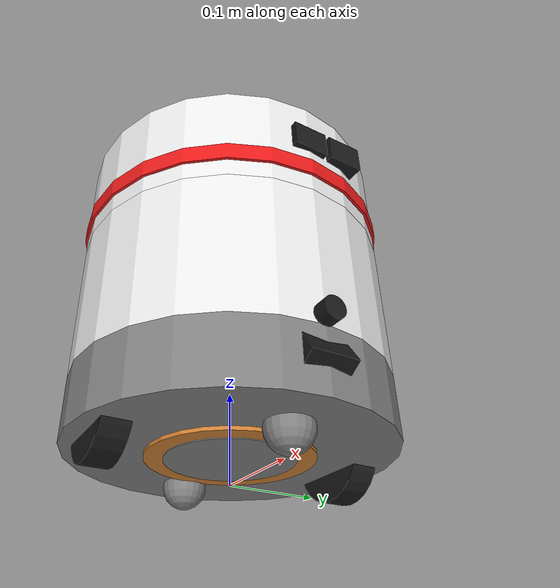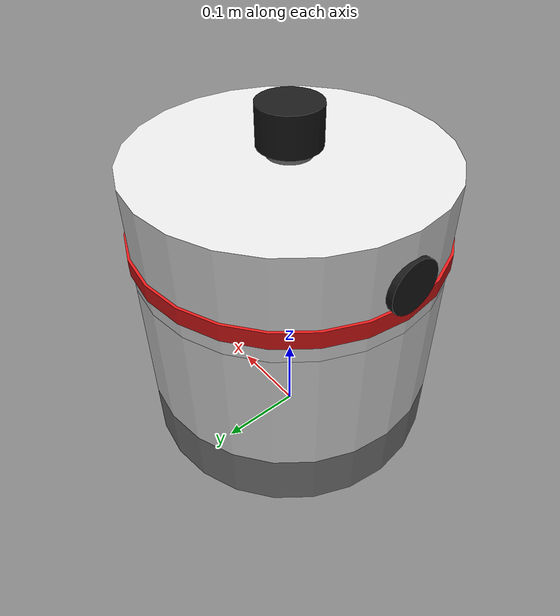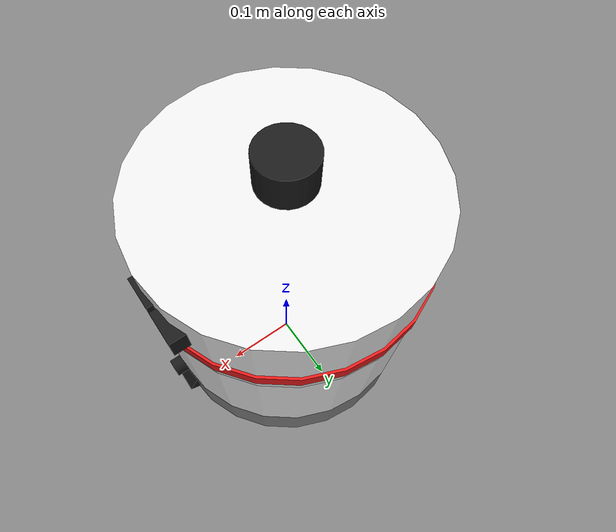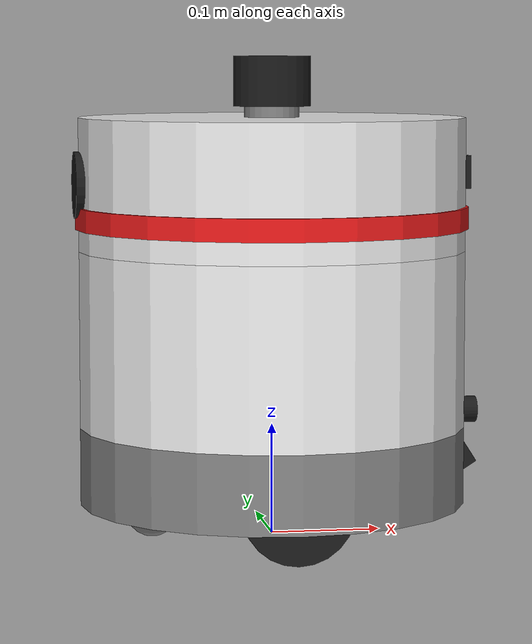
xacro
<?xml version="1.0"?>
<!-- Unit 1 body: cylindrical, three layers (drive/battery, extinguisher, sensors), LiDAR on top.
     Sensor/drive interfaces match fire_robot.urdf.xacro (see docs/robot_interface_inventory.md). -->
<robot name="fire_robot" xmlns:xacro="http://www.ros.org/wiki/xacro">

  <!-- Dimensions [m]. base_link origin lies on the ground under the wheel axle (= rotation center). -->
  <xacro:property name="body_radius" value="0.175"/>
  <xacro:property name="body_clearance" value="0.03"/>
  <!-- Layer boundaries (z): lower 0.03-0.10, middle 0.10-0.26, upper 0.26-0.38 -->
  <xacro:property name="lower_top" value="0.10"/>
  <xacro:property name="middle_top" value="0.26"/>
  <xacro:property name="upper_top" value="0.38"/>

  <!-- Drive: same values as the old body, so DiffDrive limits and odometry stay unchanged -->
  <xacro:property name="wheel_radius" value="0.05"/>
  <xacro:property name="wheel_width" value="0.03"/>
  <xacro:property name="wheel_separation" value="0.28"/>
  <xacro:property name="wheel_mass" value="0.2"/>
  <xacro:property name="caster_radius" value="0.025"/>
  <xacro:property name="caster_x" value="-0.11"/>

  <!-- Heavy parts low: battery + lower deck carry most of the mass -->
  <xacro:property name="battery_mass" value="1.5"/>
  <xacro:property name="lower_mass" value="0.8"/>
  <xacro:property name="middle_mass" value="0.4"/>
  <xacro:property name="upper_mass" value="0.3"/>
  <xacro:property name="can_mass" value="0.4"/>

  <!-- Sensors face forward (yaw 0); mission_node reads their positions from TF.
       Camera lenses sit just outside the shell, so no part of the body is in view. -->
  <xacro:property name="lidar_x" value="0.0"/>
  <!-- Scan plane below the lowest furniture top (coffee table, 0.45) used by the map -->
  <xacro:property name="lidar_z" value="0.41"/>
  <!-- Thermal camera must stay on the center line (ALIGN turns the heading onto it) -->
  <xacro:property name="thermal_x" value="0.18"/>
  <xacro:property name="thermal_z" value="0.33"/>
  <xacro:property name="thermal_hfov" value="1.0472"/>
  <xacro:property name="rgb_y" value="0.045"/>
  <xacro:property name="camera_depth" value="0.03"/>

  <!-- Nozzle link center; tip at x 0.19, z 0.11 (spray_nozzle defaults) -->
  <xacro:property name="nozzle_x" value="0.175"/>
  <xacro:property name="nozzle_z" value="0.11"/>
  <xacro:property name="nozzle_length" value="0.03"/>

  <xacro:property name="can_radius" value="0.033"/>
  <xacro:property name="can_height" value="0.15"/>
  <xacro:property name="can_x" value="-0.06"/>

  <material name="white"><color rgba="0.9 0.9 0.9 1"/></material>
  <material name="red"><color rgba="0.9 0.1 0.1 1"/></material>
  <material name="black"><color rgba="0.1 0.1 0.1 1"/></material>
  <material name="grey"><color rgba="0.5 0.5 0.5 1"/></material>
  <material name="copper"><color rgba="0.8 0.5 0.2 1"/></material>

  <xacro:macro name="cylinder_inertial" params="mass radius length z">
    <inertial>
      <origin xyz="0 0 ${z}"/>
      <mass value="${mass}"/>
      <inertia ixx="${mass*(3*radius*radius + length*length)/12}" ixy="0" ixz="0"
               iyy="${mass*(3*radius*radius + length*length)/12}" iyz="0"
               izz="${mass*radius*radius/2}"/>
    </inertial>
  </xacro:macro>

  <!-- Body layer: one cylinder segment from z_bottom to z_top (base_link frame) -->
  <xacro:macro name="body_layer" params="name z_bottom z_top mass material">
    <link name="${name}_link">
      <visual>
        <origin xyz="0 0 ${(z_bottom + z_top)/2}"/>
        <geometry><cylinder radius="${body_radius}" length="${z_top - z_bottom}"/></geometry>
        <material name="${material}"/>
      </visual>
      <collision>
        <origin xyz="0 0 ${(z_bottom + z_top)/2}"/>
        <geometry><cylinder radius="${body_radius}" length="${z_top - z_bottom}"/></geometry>
      </collision>
      <xacro:cylinder_inertial mass="${mass}" radius="${body_radius}"
                               length="${z_top - z_bottom}" z="${(z_bottom + z_top)/2}"/>
    </link>
    <joint name="${name}_joint" type="fixed">
      <parent link="base_link"/>
      <child link="${name}_link"/>
    </joint>
  </xacro:macro>

  <!-- Dummy root without inertia (KDL does not support an inertial root link) -->
  <link name="base_footprint"/>
  <link name="base_link"/>
  <joint name="base_joint" type="fixed">
    <parent link="base_footprint"/>
    <child link="base_link"/>
  </joint>

  <!-- ===== Lower layer: drive wheels, casters, battery ===== -->
  <xacro:body_layer name="lower_body" z_bottom="${body_clearance}" z_top="${lower_top}"
                    mass="${lower_mass}" material="grey"/>

  <link name="battery_link">
    <visual>
      <geometry><box size="0.14 0.20 0.05"/></geometry>
      <material name="black"/>
    </visual>
    <inertial>
      <mass value="${battery_mass}"/>
      <inertia ixx="${battery_mass*(0.20*0.20 + 0.05*0.05)/12}" ixy="0" ixz="0"
               iyy="${battery_mass*(0.14*0.14 + 0.05*0.05)/12}" iyz="0"
               izz="${battery_mass*(0.14*0.14 + 0.20*0.20)/12}"/>
    </inertial>
  </link>
  <joint name="battery_joint" type="fixed">
    <parent link="base_link"/>
    <child link="battery_link"/>
    <origin xyz="0 0 0.06"/>
  </joint>

  <xacro:macro name="wheel" params="side y_sign">
    <link name="${side}_wheel_link">
      <visual>
        <origin rpy="${pi/2} 0 0"/>
        <geometry><cylinder radius="${wheel_radius}" length="${wheel_width}"/></geometry>
        <material name="black"/>
      </visual>
      <collision>
        <origin rpy="${pi/2} 0 0"/>
        <geometry><cylinder radius="${wheel_radius}" length="${wheel_width}"/></geometry>
      </collision>
      <inertial>
        <origin rpy="${pi/2} 0 0"/>
        <mass value="${wheel_mass}"/>
        <inertia ixx="${wheel_mass*(3*wheel_radius*wheel_radius + wheel_width*wheel_width)/12}" ixy="0" ixz="0"
                 iyy="${wheel_mass*(3*wheel_radius*wheel_radius + wheel_width*wheel_width)/12}" iyz="0"
                 izz="${wheel_mass*wheel_radius*wheel_radius/2}"/>
      </inertial>
    </link>
    <joint name="${side}_wheel_joint" type="continuous">
      <parent link="base_link"/>
      <child link="${side}_wheel_link"/>
      <origin xyz="0 ${y_sign*wheel_separation/2} ${wheel_radius}"/>
      <axis xyz="0 1 0"/>
    </joint>
    <gazebo reference="${side}_wheel_link">
      <mu1>1.0</mu1>
      <mu2>1.0</mu2>
    </gazebo>
  </xacro:macro>
  <xacro:wheel side="left" y_sign="1"/>
  <xacro:wheel side="right" y_sign="-1"/>

  <!-- Frictionless ball casters front and back -->
  <xacro:macro name="caster" params="name x">
    <link name="${name}_link">
      <visual>
        <geometry><sphere radius="${caster_radius}"/></geometry>
        <material name="grey"/>
      </visual>
      <collision>
        <geometry><sphere radius="${caster_radius}"/></geometry>
      </collision>
      <inertial>
        <mass value="0.05"/>
        <inertia ixx="1e-5" ixy="0" ixz="0" iyy="1e-5" iyz="0" izz="1e-5"/>
      </inertial>
    </link>
    <joint name="${name}_joint" type="fixed">
      <parent link="base_link"/>
      <child link="${name}_link"/>
      <origin xyz="${x} 0 ${caster_radius}"/>
    </joint>
    <gazebo reference="${name}_link">
      <mu1>0.0</mu1>
      <mu2>0.0</mu2>
    </gazebo>
  </xacro:macro>
  <xacro:caster name="caster" x="${caster_x}"/>
  <xacro:caster name="front_caster" x="${-caster_x}"/>

  <!-- Ring-shaped charging contact on the bottom (visual only): copper ring, grey center -->
  <link name="charging_contact_link">
    <visual>
      <origin xyz="0 0 -0.002"/>
      <geometry><cylinder radius="0.09" length="0.004"/></geometry>
      <material name="copper"/>
    </visual>
    <visual>
      <origin xyz="0 0 -0.0025"/>
      <geometry><cylinder radius="0.07" length="0.005"/></geometry>
      <material name="grey"/>
    </visual>
  </link>
  <joint name="charging_contact_joint" type="fixed">
    <parent link="base_link"/>
    <child link="charging_contact_link"/>
    <origin xyz="0 0 ${body_clearance}"/>
  </joint>

  <!-- Floor projector at the front bottom, tilted down toward the floor ahead -->
  <link name="projector_link">
    <visual>
      <geometry><box size="0.03 0.05 0.03"/></geometry>
      <material name="black"/>
    </visual>
  </link>
  <joint name="projector_joint" type="fixed">
    <parent link="base_link"/>
    <child link="projector_link"/>
    <origin xyz="0.165 0 0.07" rpy="0 1.0 0"/>
  </joint>

  <!-- ===== Middle layer: extinguisher can, weight sensor, nozzle ===== -->
  <xacro:body_layer name="middle_body" z_bottom="${lower_top}" z_top="${middle_top}"
                    mass="${middle_mass}" material="white"/>

  <!-- Load cell under the can (frame only) -->
  <link name="weight_sensor_link"/>
  <joint name="weight_sensor_joint" type="fixed">
    <parent link="base_link"/>
    <child link="weight_sensor_link"/>
    <origin xyz="${can_x} 0 ${lower_top}"/>
  </joint>

  <link name="extinguisher_can_link">
    <visual>
      <origin xyz="0 0 ${can_height/2}"/>
      <geometry><cylinder radius="${can_radius}" length="${can_height}"/></geometry>
      <material name="red"/>
    </visual>
    <xacro:cylinder_inertial mass="${can_mass}" radius="${can_radius}"
                             length="${can_height}" z="${can_height/2}"/>
  </link>
  <joint name="extinguisher_can_joint" type="fixed">
    <parent link="weight_sensor_link"/>
    <child link="extinguisher_can_link"/>
  </joint>

  <!-- Extinguisher nozzle at the front, aimed forward (+x) -->
  <link name="nozzle_link">
    <visual>
      <origin rpy="0 ${pi/2} 0"/>
      <geometry><cylinder radius="0.012" length="${nozzle_length}"/></geometry>
      <material name="black"/>
    </visual>
  </link>
  <joint name="nozzle_joint" type="fixed">
    <parent link="base_link"/>
    <child link="nozzle_link"/>
    <origin xyz="${nozzle_x} 0 ${nozzle_z}"/>
  </joint>

  <!-- Spray particles are a separate model (fire_mission/models/spray.sdf) that the
       spray_nozzle node spawns in front of the nozzle while spraying. -->

  <!-- ===== Upper layer: cameras, speaker, beacon band ===== -->
  <xacro:body_layer name="upper_body" z_bottom="${middle_top}" z_top="${upper_top}"
                    mass="${upper_mass}" material="white"/>

  <link name="thermal_link">
    <visual>
      <origin xyz="${-camera_depth/2} 0 0"/>
      <geometry><box size="${camera_depth} 0.04 0.03"/></geometry>
      <material name="black"/>
    </visual>
  </link>
  <joint name="thermal_joint" type="fixed">
    <parent link="base_link"/>
    <child link="thermal_link"/>
    <origin xyz="${thermal_x} 0 ${thermal_z}"/>
  </joint>

  <!-- RGB camera beside the thermal camera, same lens plane and heading (frame/visual only) -->
  <link name="rgb_camera_link">
    <visual>
      <origin xyz="${-camera_depth/2} 0 0"/>
      <geometry><box size="${camera_depth} 0.04 0.03"/></geometry>
      <material name="black"/>
    </visual>
  </link>
  <joint name="rgb_camera_joint" type="fixed">
    <parent link="base_link"/>
    <child link="rgb_camera_link"/>
    <origin xyz="${thermal_x} ${rgb_y} ${thermal_z}"/>
  </joint>

  <!-- Speaker (siren / voice) facing backward -->
  <link name="speaker_link">
    <visual>
      <origin rpy="0 ${pi/2} 0"/>
      <geometry><cylinder radius="0.03" length="0.008"/></geometry>
      <material name="black"/>
    </visual>
  </link>
  <joint name="speaker_joint" type="fixed">
    <parent link="base_link"/>
    <child link="speaker_link"/>
    <origin xyz="${-body_radius} 0 0.32" rpy="0 0 ${pi}"/>
  </joint>

  <!-- Beacon light band around the body (visual only) -->
  <link name="beacon_band_link">
    <visual>
      <geometry><cylinder radius="${body_radius + 0.003}" length="0.02"/></geometry>
      <material name="red"/>
    </visual>
  </link>
  <joint name="beacon_band_joint" type="fixed">
    <parent link="base_link"/>
    <child link="beacon_band_link"/>
    <origin xyz="0 0 0.29"/>
  </joint>

  <!-- ===== Top: 360 deg LiDAR, nothing above it ===== -->
  <link name="lidar_link">
    <visual>
      <origin xyz="0 0 ${(upper_top - lidar_z)/2}"/>
      <geometry><cylinder radius="0.025" length="${lidar_z - upper_top}"/></geometry>
      <material name="grey"/>
    </visual>
    <visual>
      <origin xyz="0 0 0.0025"/>
      <geometry><cylinder radius="0.035" length="0.045"/></geometry>
      <material name="black"/>
    </visual>
    <inertial>
      <mass value="0.1"/>
      <inertia ixx="5e-5" ixy="0" ixz="0" iyy="5e-5" iyz="0" izz="5e-5"/>
    </inertial>
  </link>
  <joint name="lidar_joint" type="fixed">
    <parent link="base_link"/>
    <child link="lidar_link"/>
    <origin xyz="${lidar_x} 0 ${lidar_z}"/>
  </joint>

  <!-- ===== Gazebo sensors (interfaces unchanged) ===== -->
  <gazebo reference="lidar_link">
    <sensor name="lidar" type="gpu_lidar">
      <gz_frame_id>lidar_link</gz_frame_id>
      <topic>/scan</topic>
      <update_rate>10</update_rate>
      <always_on>true</always_on>
      <visualize>false</visualize>
      <lidar>
        <scan>
          <horizontal>
            <samples>360</samples>
            <resolution>1</resolution>
            <min_angle>-3.14159</min_angle>
            <max_angle>3.12414</max_angle>
          </horizontal>
        </scan>
        <range>
          <min>0.12</min>
          <max>8.0</max>
          <resolution>0.01</resolution>
        </range>
        <noise>
          <type>gaussian</type>
          <mean>0.0</mean>
          <stddev>0.01</stddev>
        </noise>
      </lidar>
    </sensor>
  </gazebo>

  <gazebo reference="thermal_link">
    <sensor name="thermal_camera" type="thermal">
      <gz_frame_id>thermal_link</gz_frame_id>
      <topic>/thermal/image</topic>
      <update_rate>10</update_rate>
      <always_on>true</always_on>
      <visualize>false</visualize>
      <camera>
        <horizontal_fov>${thermal_hfov}</horizontal_fov>
        <image>
          <width>160</width>
          <height>120</height>
          <!-- L16: pixel value = temperature / 0.01 K -->
          <format>L16</format>
        </image>
        <clip>
          <near>0.1</near>
          <far>10.0</far>
        </clip>
      </camera>
    </sensor>
  </gazebo>

  <!-- Gazebo systems: odom frame -> base_footprint, wheel joint states -->
  <gazebo>
    <plugin filename="gz-sim-diff-drive-system" name="gz::sim::systems::DiffDrive">
      <left_joint>left_wheel_joint</left_joint>
      <right_joint>right_wheel_joint</right_joint>
      <wheel_separation>${wheel_separation}</wheel_separation>
      <wheel_radius>${wheel_radius}</wheel_radius>
      <max_linear_acceleration>1.0</max_linear_acceleration>
      <max_angular_acceleration>3.0</max_angular_acceleration>
      <topic>/cmd_vel</topic>
      <odom_topic>/odom</odom_topic>
      <tf_topic>/tf</tf_topic>
      <frame_id>odom</frame_id>
      <child_frame_id>base_footprint</child_frame_id>
      <odom_publish_frequency>20</odom_publish_frequency>
    </plugin>
    <plugin filename="gz-sim-joint-state-publisher-system" name="gz::sim::systems::JointStatePublisher">
      <topic>/joint_states</topic>
      <joint_name>left_wheel_joint</joint_name>
      <joint_name>right_wheel_joint</joint_name>
    </plugin>
  </gazebo>

</robot>
